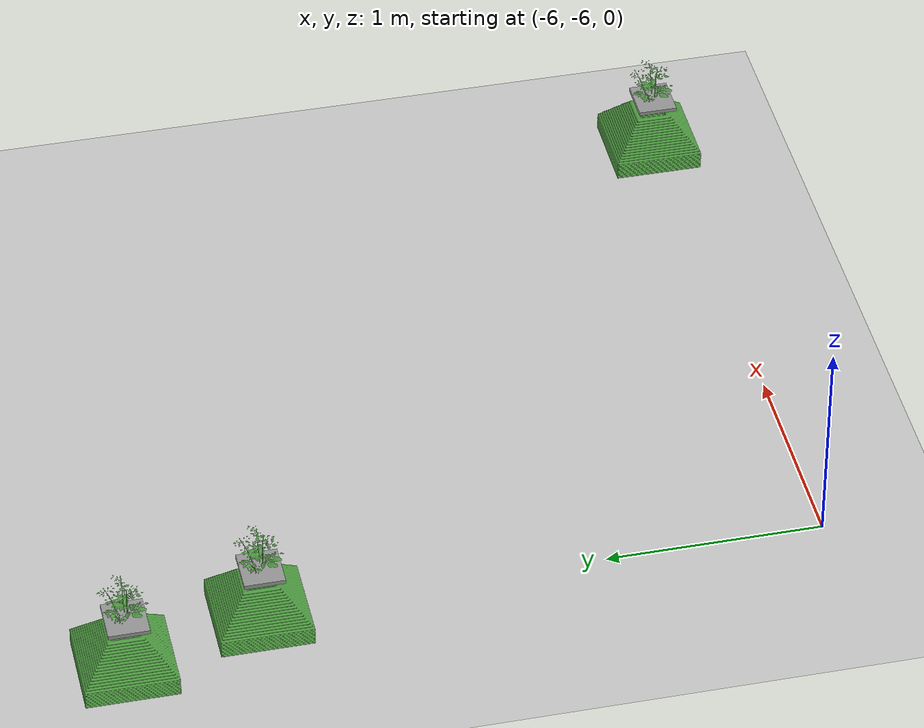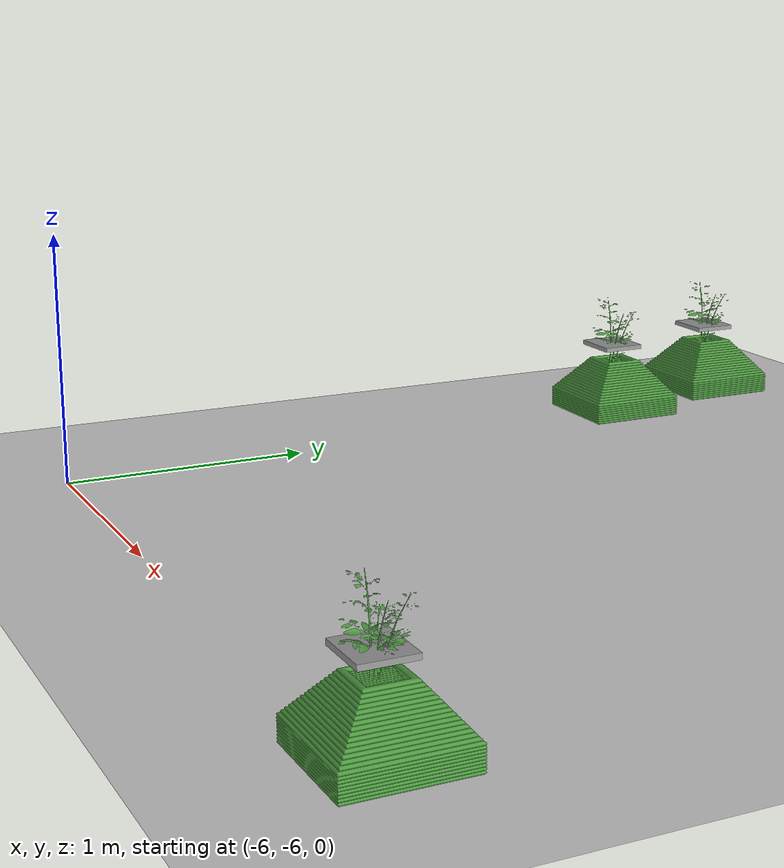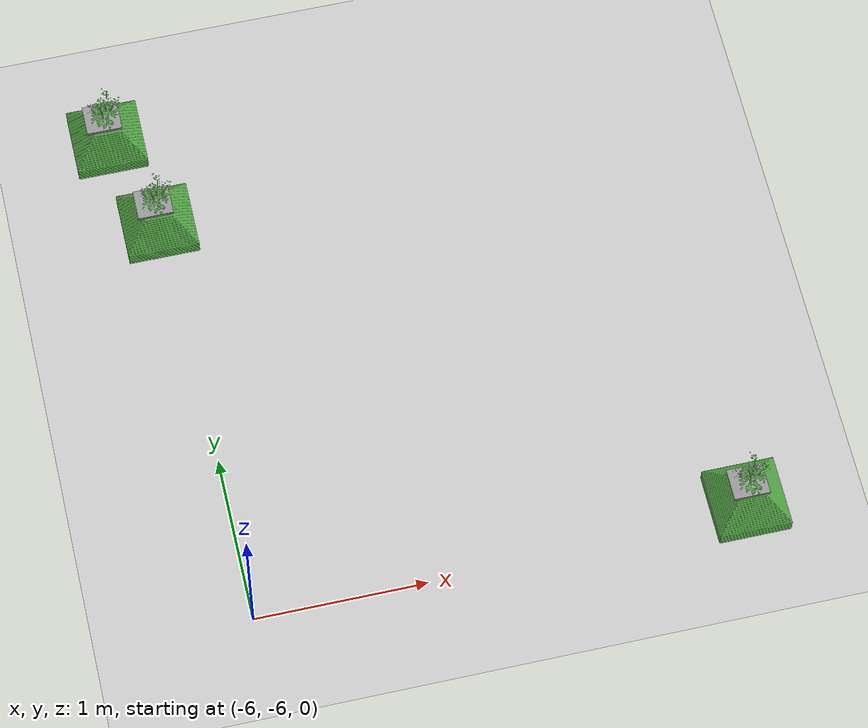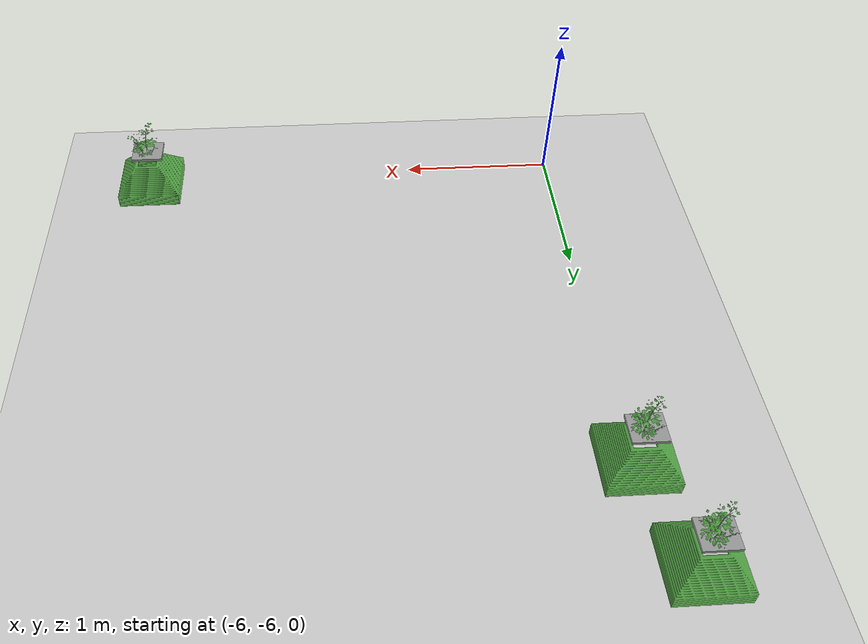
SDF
<sdf version="1.6">
 <world name="default">
  <model name="ground_plane">
   <static>1</static>
   <link name="link">
    <collision name="collision">
     <geometry><plane><normal>0 0 1</normal><size>100 100</size></plane></geometry>
     <surface><friction><ode><mu>100</mu><mu2>50</mu2></ode></friction></surface>
    </collision>
    <visual name="visual">
     <cast_shadows>0</cast_shadows>
     <geometry><plane><normal>0 0 1</normal><size>100 100</size></plane></geometry>
     <material>
      <script><uri>file://media/materials/scripts/gazebo.material</uri><name>Gazebo/Grey</name></script>
     </material>
    </visual>
   </link>
  </model>
  <model name="plant_11">
   <link name="link_0">
    <inertial>
     <mass>1</mass>
     <inertia>
      <ixx>0.0134051</ixx>
      <ixy>0</ixy>
      <ixz>0</ixz>
      <iyy>0.0134051</iyy>
      <iyz>0</iyz>
      <izz>0.0254102</izz>
     </inertia>
    </inertial>
    <gravity>0</gravity>
    <visual name="visual">
     <geometry><mesh><uri>model://square_pot/pot.stl</uri><scale>0.033 0.033 0.02</scale></mesh></geometry>
     <material>
      <lighting>1</lighting>
      <script><uri>file://media/materials/scripts/gazebo.material</uri><name>Gazebo/Grass</name></script>
      <ambient>0.3 0.3 0.3 1</ambient>
      <diffuse>0.7 0.7 0.7 1</diffuse>
      <specular>0.01 0.01 0.01 1</specular>
      <emissive>0 0 0 1</emissive>
      <shader type="vertex"><normal_map>__default__</normal_map></shader>
     </material>
    </visual>
    <collision name="collision">
     <pose>0 0 0.25 0 -0 0</pose>
     <geometry><box><size>0.4 0.4 0.4</size></box></geometry>
     <surface>
      <friction>
       <ode><mu>1</mu><mu2>1</mu2><fdir1>0 0 0</fdir1><slip1>0</slip1><slip2>0</slip2></ode>
       <torsional>
        <coefficient>1</coefficient>
        <patch_radius>0</patch_radius>
        <surface_radius>0</surface_radius>
        <use_patch_radius>1</use_patch_radius>
        <ode><slip>0</slip></ode>
       </torsional>
      </friction>
      <bounce><restitution_coefficient>0</restitution_coefficient><threshold>1e+06</threshold></bounce>
      <contact>
       <collide_without_contact>1</collide_without_contact>
       <collide_without_contact_bitmask>1</collide_without_contact_bitmask>
       <collide_bitmask>1</collide_bitmask>
       <ode>
        <soft_cfm>0</soft_cfm>
        <soft_erp>0.2</soft_erp>
        <kp>1e+13</kp>
        <kd>1</kd>
        <max_vel>0.01</max_vel>
        <min_depth>0</min_depth>
       </ode>
       <bullet>
        <split_impulse>1</split_impulse>
        <split_impulse_penetration_threshold>-0.01</split_impulse_penetration_threshold>
        <soft_cfm>0</soft_cfm>
        <soft_erp>0.2</soft_erp>
        <kp>1e+13</kp>
        <kd>1</kd>
       </bullet>
      </contact>
     </surface>
    </collision>
   </link>
   <link name="link_0_0">
    <pose>-0.011441 -0.008338 0.308474 0 -0 0</pose>
    <inertial>
     <mass>0.000736153</mass>
     <inertia>
      <ixx>2.11165e-06</ixx>
      <ixy>0</ixy>
      <ixz>0</ixz>
      <iyy>2.64382e-06</iyy>
      <iyz>0</iyz>
      <izz>4.70976e-06</izz>
     </inertia>
    </inertial>
    <visual name="visual">
     <geometry><box><size>0.206678 0.18452 0.019291</size></box></geometry>
     <material>
      <lighting>1</lighting>
      <script><uri>file://media/materials/scripts/gazebo.material</uri><name>Gazebo/Grey</name></script>
      <ambient>0.3 0.3 0.3 1</ambient>
      <diffuse>0.7 0.7 0.7 1</diffuse>
      <specular>0.01 0.01 0.01 1</specular>
      <emissive>0 0 0 1</emissive>
     </material>
    </visual>
    <collision name="collision">
     <geometry><box><size>0.206678 0.18452 0.019291</size></box></geometry>
     <surface>
      <friction>
       <ode><mu>1</mu><mu2>1</mu2><fdir1>0 0 0</fdir1><slip1>0</slip1><slip2>0</slip2></ode>
       <torsional>
        <coefficient>1</coefficient>
        <patch_radius>0</patch_radius>
        <surface_radius>0</surface_radius>
        <use_patch_radius>1</use_patch_radius>
        <ode><slip>0</slip></ode>
       </torsional>
      </friction>
      <bounce><restitution_coefficient>0</restitution_coefficient><threshold>1e+06</threshold></bounce>
      <contact>
       <collide_without_contact>0</collide_without_contact>
       <collide_without_contact_bitmask>1</collide_without_contact_bitmask>
       <collide_bitmask>1</collide_bitmask>
       <ode>
        <soft_cfm>0</soft_cfm>
        <soft_erp>0.2</soft_erp>
        <kp>1e+13</kp>
        <kd>1</kd>
        <max_vel>0.01</max_vel>
        <min_depth>0</min_depth>
       </ode>
       <bullet>
        <split_impulse>1</split_impulse>
        <split_impulse_penetration_threshold>-0.01</split_impulse_penetration_threshold>
        <soft_cfm>0</soft_cfm>
        <soft_erp>0.2</soft_erp>
        <kp>1e+13</kp>
        <kd>1</kd>
       </bullet>
      </contact>
     </surface>
    </collision>
   </link>
   <static>1</static>
   <pose>-6.23385 -2.79018 0 0 -0 0</pose>
  </model>
  <model name="plant_12">
   <link name="link_0">
    <inertial>
     <mass>1</mass>
     <inertia>
      <ixx>0.0134051</ixx>
      <ixy>0</ixy>
      <ixz>0</ixz>
      <iyy>0.0134051</iyy>
      <iyz>0</iyz>
      <izz>0.0254102</izz>
     </inertia>
    </inertial>
    <gravity>0</gravity>
    <visual name="visual">
     <geometry><mesh><uri>model://square_pot/pot.stl</uri><scale>0.033 0.033 0.02</scale></mesh></geometry>
     <material>
      <lighting>1</lighting>
      <script><uri>file://media/materials/scripts/gazebo.material</uri><name>Gazebo/Grass</name></script>
      <ambient>0.3 0.3 0.3 1</ambient>
      <diffuse>0.7 0.7 0.7 1</diffuse>
      <specular>0.01 0.01 0.01 1</specular>
      <emissive>0 0 0 1</emissive>
      <shader type="vertex"><normal_map>__default__</normal_map></shader>
     </material>
    </visual>
    <collision name="collision">
     <pose>0 0 0.25 0 -0 0</pose>
     <geometry><box><size>0.4 0.4 0.4</size></box></geometry>
     <surface>
      <friction>
       <ode><mu>1</mu><mu2>1</mu2><fdir1>0 0 0</fdir1><slip1>0</slip1><slip2>0</slip2></ode>
       <torsional>
        <coefficient>1</coefficient>
        <patch_radius>0</patch_radius>
        <surface_radius>0</surface_radius>
        <use_patch_radius>1</use_patch_radius>
        <ode><slip>0</slip></ode>
       </torsional>
      </friction>
      <bounce><restitution_coefficient>0</restitution_coefficient><threshold>1e+06</threshold></bounce>
      <contact>
       <collide_without_contact>1</collide_without_contact>
       <collide_without_contact_bitmask>1</collide_without_contact_bitmask>
       <collide_bitmask>1</collide_bitmask>
       <ode>
        <soft_cfm>0</soft_cfm>
        <soft_erp>0.2</soft_erp>
        <kp>1e+13</kp>
        <kd>1</kd>
        <max_vel>0.01</max_vel>
        <min_depth>0</min_depth>
       </ode>
       <bullet>
        <split_impulse>1</split_impulse>
        <split_impulse_penetration_threshold>-0.01</split_impulse_penetration_threshold>
        <soft_cfm>0</soft_cfm>
        <soft_erp>0.2</soft_erp>
        <kp>1e+13</kp>
        <kd>1</kd>
       </bullet>
      </contact>
     </surface>
    </collision>
   </link>
   <link name="link_0_0">
    <pose>-0.011441 -0.008338 0.308474 0 -0 0</pose>
    <inertial>
     <mass>0.000736153</mass>
     <inertia>
      <ixx>2.11165e-06</ixx>
      <ixy>0</ixy>
      <ixz>0</ixz>
      <iyy>2.64382e-06</iyy>
      <iyz>0</iyz>
      <izz>4.70976e-06</izz>
     </inertia>
    </inertial>
    <visual name="visual">
     <geometry><box><size>0.206678 0.18452 0.019291</size></box></geometry>
     <material>
      <lighting>1</lighting>
      <script><uri>file://media/materials/scripts/gazebo.material</uri><name>Gazebo/Grey</name></script>
      <ambient>0.3 0.3 0.3 1</ambient>
      <diffuse>0.7 0.7 0.7 1</diffuse>
      <specular>0.01 0.01 0.01 1</specular>
      <emissive>0 0 0 1</emissive>
     </material>
    </visual>
    <collision name="collision">
     <geometry><box><size>0.206678 0.18452 0.019291</size></box></geometry>
     <surface>
      <friction>
       <ode><mu>1</mu><mu2>1</mu2><fdir1>0 0 0</fdir1><slip1>0</slip1><slip2>0</slip2></ode>
       <torsional>
        <coefficient>1</coefficient>
        <patch_radius>0</patch_radius>
        <surface_radius>0</surface_radius>
        <use_patch_radius>1</use_patch_radius>
        <ode><slip>0</slip></ode>
       </torsional>
      </friction>
      <bounce><restitution_coefficient>0</restitution_coefficient><threshold>1e+06</threshold></bounce>
      <contact>
       <collide_without_contact>0</collide_without_contact>
       <collide_without_contact_bitmask>1</collide_without_contact_bitmask>
       <collide_bitmask>1</collide_bitmask>
       <ode>
        <soft_cfm>0</soft_cfm>
        <soft_erp>0.2</soft_erp>
        <kp>1e+13</kp>
        <kd>1</kd>
        <max_vel>0.01</max_vel>
        <min_depth>0</min_depth>
       </ode>
       <bullet>
        <split_impulse>1</split_impulse>
        <split_impulse_penetration_threshold>-0.01</split_impulse_penetration_threshold>
        <soft_cfm>0</soft_cfm>
        <soft_erp>0.2</soft_erp>
        <kp>1e+13</kp>
        <kd>1</kd>
       </bullet>
      </contact>
     </surface>
    </collision>
   </link>
   <static>1</static>
   <pose>-6.04763 -3.41944 0 0 -0 0</pose>
  </model>
  <model name="plant_30">
   <link name="link_0">
    <inertial>
     <mass>1</mass>
     <inertia>
      <ixx>0.0134051</ixx>
      <ixy>0</ixy>
      <ixz>0</ixz>
      <iyy>0.0134051</iyy>
      <iyz>0</iyz>
      <izz>0.0254102</izz>
     </inertia>
    </inertial>
    <gravity>0</gravity>
    <visual name="visual">
     <geometry><mesh><uri>model://square_pot/pot.stl</uri><scale>0.033 0.033 0.02</scale></mesh></geometry>
     <material>
      <lighting>1</lighting>
      <script><uri>file://media/materials/scripts/gazebo.material</uri><name>Gazebo/Grass</name></script>
      <ambient>0.3 0.3 0.3 1</ambient>
      <diffuse>0.7 0.7 0.7 1</diffuse>
      <specular>0.01 0.01 0.01 1</specular>
      <emissive>0 0 0 1</emissive>
      <shader type="vertex"><normal_map>__default__</normal_map></shader>
     </material>
    </visual>
    <collision name="collision">
     <pose>0 0 0.25 0 -0 0</pose>
     <geometry><box><size>0.4 0.4 0.4</size></box></geometry>
     <surface>
      <friction>
       <ode><mu>1</mu><mu2>1</mu2><fdir1>0 0 0</fdir1><slip1>0</slip1><slip2>0</slip2></ode>
       <torsional>
        <coefficient>1</coefficient>
        <patch_radius>0</patch_radius>
        <surface_radius>0</surface_radius>
        <use_patch_radius>1</use_patch_radius>
        <ode><slip>0</slip></ode>
       </torsional>
      </friction>
      <bounce><restitution_coefficient>0</restitution_coefficient><threshold>1e+06</threshold></bounce>
      <contact>
       <collide_without_contact>1</collide_without_contact>
       <collide_without_contact_bitmask>1</collide_without_contact_bitmask>
       <collide_bitmask>1</collide_bitmask>
       <ode>
        <soft_cfm>0</soft_cfm>
        <soft_erp>0.2</soft_erp>
        <kp>1e+13</kp>
        <kd>1</kd>
        <max_vel>0.01</max_vel>
        <min_depth>0</min_depth>
       </ode>
       <bullet>
        <split_impulse>1</split_impulse>
        <split_impulse_penetration_threshold>-0.01</split_impulse_penetration_threshold>
        <soft_cfm>0</soft_cfm>
        <soft_erp>0.2</soft_erp>
        <kp>1e+13</kp>
        <kd>1</kd>
       </bullet>
      </contact>
     </surface>
    </collision>
   </link>
   <link name="link_0_0">
    <pose>-0.011441 -0.008338 0.308474 0 -0 0</pose>
    <inertial>
     <mass>0.000736153</mass>
     <inertia>
      <ixx>2.11165e-06</ixx>
      <ixy>0</ixy>
      <ixz>0</ixz>
      <iyy>2.64382e-06</iyy>
      <iyz>0</iyz>
      <izz>4.70976e-06</izz>
     </inertia>
    </inertial>
    <visual name="visual">
     <geometry><box><size>0.206678 0.18452 0.019291</size></box></geometry>
     <material>
      <lighting>1</lighting>
      <script><uri>file://media/materials/scripts/gazebo.material</uri><name>Gazebo/Grey</name></script>
      <ambient>0.3 0.3 0.3 1</ambient>
      <diffuse>0.7 0.7 0.7 1</diffuse>
      <specular>0.01 0.01 0.01 1</specular>
      <emissive>0 0 0 1</emissive>
     </material>
    </visual>
    <collision name="collision">
     <geometry><box><size>0.206678 0.18452 0.019291</size></box></geometry>
     <surface>
      <friction>
       <ode><mu>1</mu><mu2>1</mu2><fdir1>0 0 0</fdir1><slip1>0</slip1><slip2>0</slip2></ode>
       <torsional>
        <coefficient>1</coefficient>
        <patch_radius>0</patch_radius>
        <surface_radius>0</surface_radius>
        <use_patch_radius>1</use_patch_radius>
        <ode><slip>0</slip></ode>
       </torsional>
      </friction>
      <bounce><restitution_coefficient>0</restitution_coefficient><threshold>1e+06</threshold></bounce>
      <contact>
       <collide_without_contact>0</collide_without_contact>
       <collide_without_contact_bitmask>1</collide_without_contact_bitmask>
       <collide_bitmask>1</collide_bitmask>
       <ode>
        <soft_cfm>0</soft_cfm>
        <soft_erp>0.2</soft_erp>
        <kp>1e+13</kp>
        <kd>1</kd>
        <max_vel>0.01</max_vel>
        <min_depth>0</min_depth>
       </ode>
       <bullet>
        <split_impulse>1</split_impulse>
        <split_impulse_penetration_threshold>-0.01</split_impulse_penetration_threshold>
        <soft_cfm>0</soft_cfm>
        <soft_erp>0.2</soft_erp>
        <kp>1e+13</kp>
        <kd>1</kd>
       </bullet>
      </contact>
     </surface>
    </collision>
   </link>
   <static>1</static>
   <pose>-3.14333 -5.92066 0 0 -0 0</pose>
  </model>
 </world>
</sdf>
